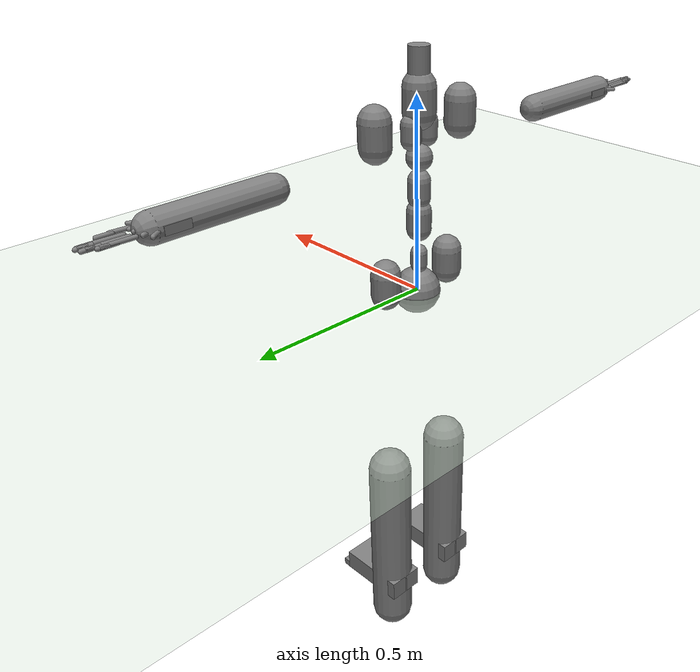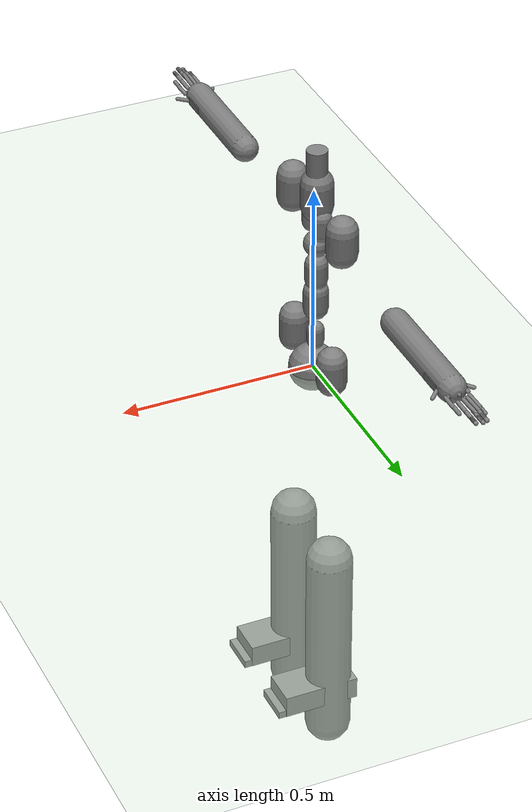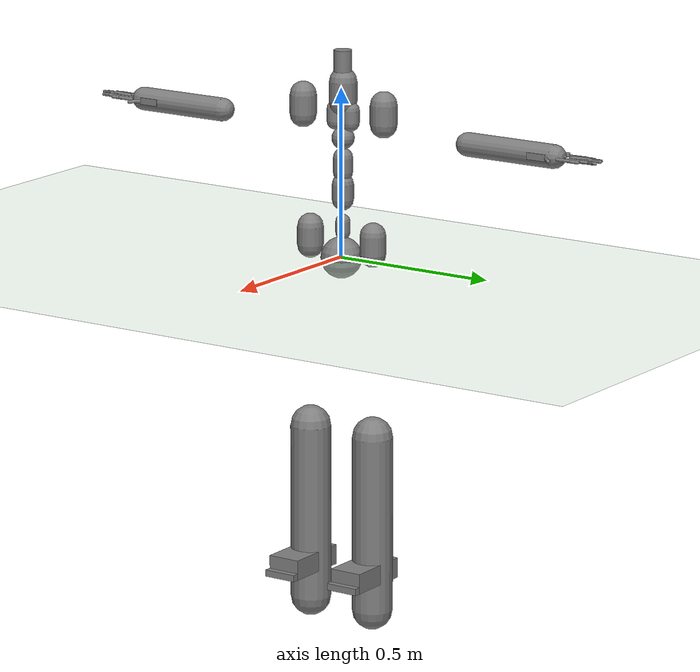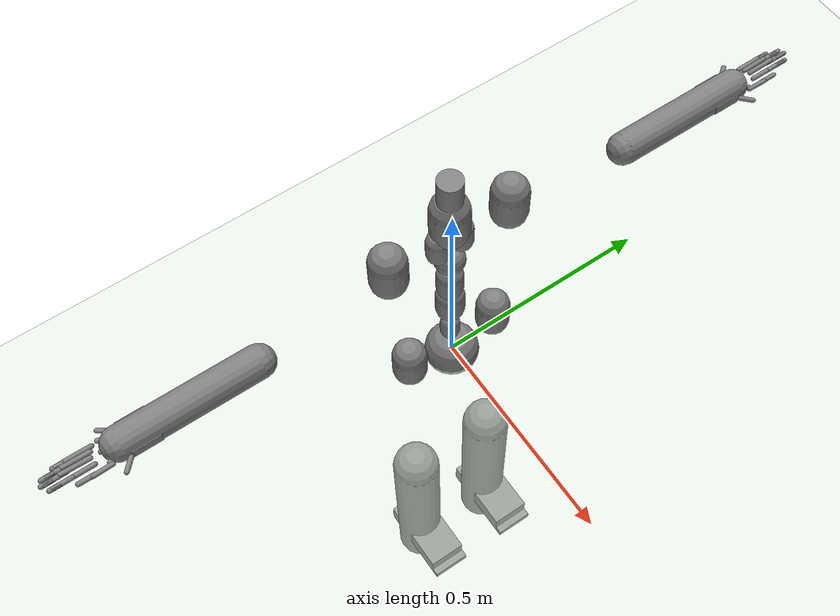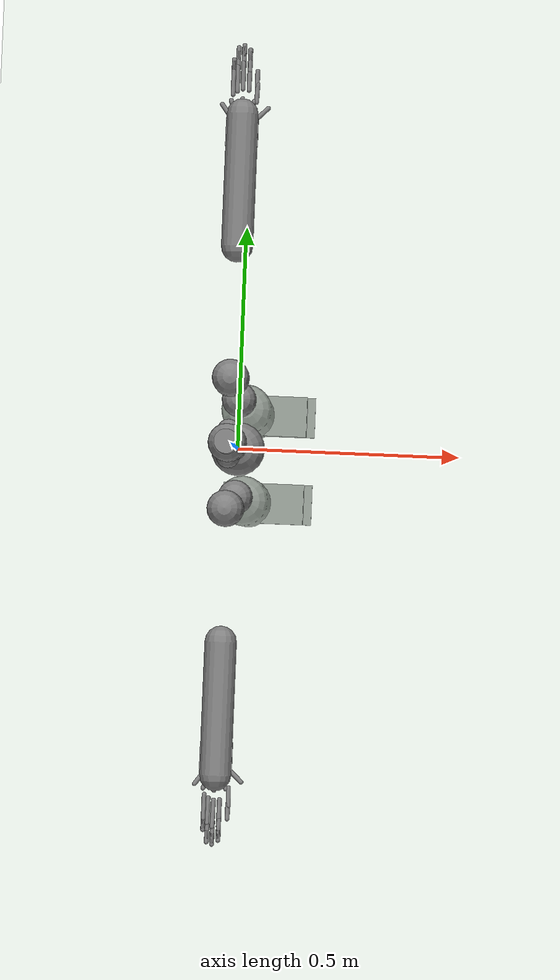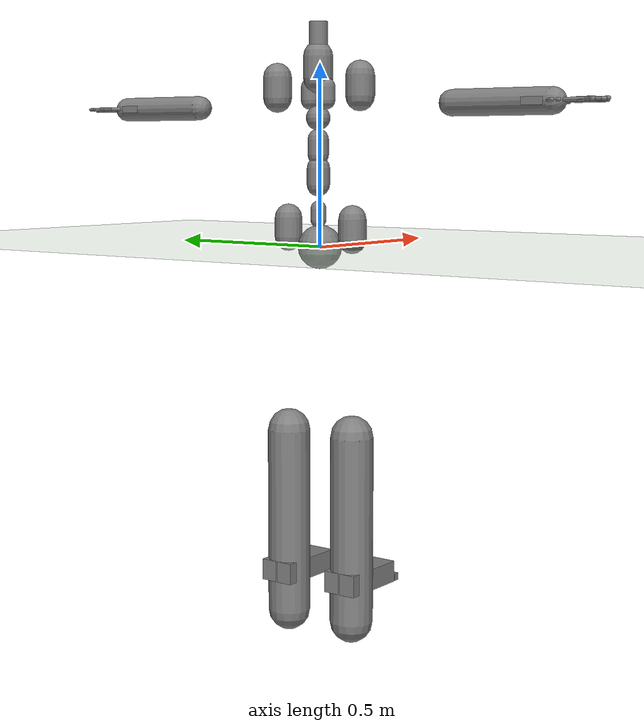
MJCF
<?xml version="1.0" ?>
<mujoco model="humanoid">
  <compiler coordinate="local"/>
  <statistic extent="2" center="0 0 1"/>
  <option timestep="0.00555"/>
  <default>
    <motor ctrlrange="-1 1" ctrllimited="true"/>
    <geom type="capsule" condim="1" friction="1.0 0.05 0.05" solimp=".9 .99 .003" solref=".015 1"/>
    <joint type="hinge" damping="0.1" stiffness="5" armature=".007" limited="true" solimplimit="0 .99 .01"/>
    <site size=".04" group="3"/>
  </default>
  <asset>
    <texture type="skybox" builtin="gradient" rgb1=".4 .5 .6" rgb2="0 0 0" width="100" height="100"/>
    <texture builtin="flat" height="1278" mark="cross" markrgb="1 1 1" name="texgeom" random="0.01" rgb1="0.8 0.6 0.4" rgb2="0.8 0.6 0.4" type="cube" width="127"/>
    <texture builtin="checker" height="100" name="texplane" rgb1="0 0 0" rgb2="0.8 0.8 0.8" type="2d" width="100"/>
    <material name="MatPlane" reflectance="0.5" shininess="1" specular="1" texrepeat="60 60" texture="texplane"/>
    <material name="geom" texture="texgeom" texuniform="true"/>
  </asset>
  <worldbody>
    <light cutoff="100" diffuse="1 1 1" dir="-0 0 -1.3" directional="true" exponent="1" pos="0 0 1.3" specular=".1 .1 .1"/>
    <geom conaffinity="1" condim="3" name="floor" pos="0 0 0" rgba="0.8 0.9 0.8 1" size="100 100 .2" type="plane" material="MatPlane"/>
    <body name="pHipOrigin" pos="0 0 0">
      <freejoint name="pHipOrigin"/>
      <geom type="sphere" contype="1" conaffinity="1" density="4629.6296296296305" size="0.06083" pos="0.0000 0.0000 -0.0000"/>
      <body name="jL5S1" pos="-0.00685425 0 0.06168810">
        <geom type="capsule" contype="1" conaffinity="1" density="1000" fromto="0 0 0.01241 0 0 0.04345" size="0.02172"/>
        <joint name="jL5S1_x" type="hinge" pos="0 0 0" axis="1 0 0" stiffness="500" damping="500" armature="0.02" range="-180.0000 180.0000"/>
        <joint name="jL5S1_y" type="hinge" pos="0 0 0" axis="0 1 0" stiffness="500" damping="500" armature="0.02" range="-180.0000 180.0000"/>
        <joint name="jL5S1_z" type="hinge" pos="0 0 0" axis="0 0 1" stiffness="500" damping="500" armature="0.02" range="-180.0000 180.0000"/>
        <body name="jL4L3" pos="0 0 0.09068398">
          <geom type="capsule" contype="1" conaffinity="1" density="1000" fromto="0 0 0.01814 0 0 0.06348" size="0.03174"/>
          <joint name="jL4L3_x" type="hinge" pos="0 0 0" axis="1 0 0" stiffness="500" damping="500" armature="0.02" range="-180.0000 180.0000"/>
          <joint name="jL4L3_y" type="hinge" pos="0 0 0" axis="0 1 0" stiffness="500" damping="500" armature="0.02" range="-180.0000 180.0000"/>
          <joint name="jL4L3_z" type="hinge" pos="0 0 0" axis="0 0 1" stiffness="500" damping="500" armature="0.02" range="-180.0000 180.0000"/>
          <body name="jL1T12" pos="-0.00064030 0 0.08299462">
            <geom type="capsule" contype="1" conaffinity="1" density="1000" fromto="0 0 0.01660 0 0 0.05810" size="0.02905"/>
            <joint name="jL1T12_x" type="hinge" pos="0 0 0" axis="1 0 0" stiffness="500" damping="500" armature="0.02" range="-180.0000 180.0000"/>
            <joint name="jL1T12_y" type="hinge" pos="0 0 0" axis="0 1 0" stiffness="500" damping="500" armature="0.02" range="-180.0000 180.0000"/>
            <joint name="jL1T12_z" type="hinge" pos="0 0 0" axis="0 0 1" stiffness="500" damping="500" armature="0.02" range="-180.0000 180.0000"/>
            <body name="jT9T8" pos="-0.00064118 0 0.08294707">
              <geom type="sphere" contype="1" conaffinity="1" density="1000" size="0.03318" pos="0.000 0.0000 0.033180"/>
              <joint name="jT9T8_x" type="hinge" pos="0 0 0" axis="1 0 0" stiffness="500" damping="500" armature="0.02" range="-180.0000 180.0000"/>
              <joint name="jT9T8_y" type="hinge" pos="0 0 0" axis="0 1 0" stiffness="500" damping="500" armature="0.02" range="-180.0000 180.0000"/>
              <joint name="jT9T8_z" type="hinge" pos="0 0 0" axis="0 0 1" stiffness="500" damping="500" armature="0.02" range="-180.0000 180.0000"/>
              <body name="jT1C7" pos="0 0 0.11675301">
                <geom type="capsule" contype="1" conaffinity="1" density="1000" fromto="0 0 0.02335 0 0 0.08173" size="0.04086"/>
                <joint name="jT1C7_x" type="hinge" pos="0 0 0" axis="1 0 0" stiffness="500" damping="500" armature="0.02" range="-180.0000 180.0000"/>
                <joint name="jT1C7_y" type="hinge" pos="0 0 0" axis="0 1 0" stiffness="500" damping="500" armature="0.02" range="-180.0000 180.0000"/>
                <joint name="jT1C7_z" type="hinge" pos="0 0 0" axis="0 0 1" stiffness="500" damping="500" armature="0.02" range="-180.0000 180.0000"/>
                <body name="jC1Head" pos="0.00102991 0 0.08729847">
                  <geom type="cylinder" contype="1" conaffinity="1" density="1000" fromto="0 0 0 0 0 0.08730" size="0.02619"/>
                  <joint name="jC1Head_x" type="hinge" pos="0 0 0" axis="1 0 0" stiffness="500" damping="500" armature="0.02" range="-180.0000 180.0000"/>
                  <joint name="jC1Head_y" type="hinge" pos="0 0 0" axis="0 1 0" stiffness="500" damping="500" armature="0.02" range="-180.0000 180.0000"/>
                  <joint name="jC1Head_z" type="hinge" pos="0 0 0" axis="0 0 1" stiffness="500" damping="500" armature="0.02" range="-180.0000 180.0000"/>
                </body>
              </body>
              <body name="jRightT4Shoulder" pos="0 -0.02716545 0.06623533">
                <geom type="capsule" contype="1" conaffinity="1" density="1000" fromto="0 0 0.01432 0 0 0.05011" size="0.02506"/>
                <joint name="jRightT4Shoulder_x" type="hinge" pos="0 0 0" axis="1 0 0" stiffness="500" damping="500" armature="0.02" range="-180.0000 180.0000"/>
                <joint name="jRightT4Shoulder_y" type="hinge" pos="0 0 0" axis="0 1 0" stiffness="500" damping="500" armature="0.02" range="-180.0000 180.0000"/>
                <joint name="jRightT4Shoulder_z" type="hinge" pos="0 0 0" axis="0 0 1" stiffness="500" damping="500" armature="0.02" range="-180.0000 180.0000"/>
                <body name="jRightShoulder" pos="0 -0.11260448 0">
                  <geom type="capsule" contype="1" conaffinity="1" density="1000" fromto="0 0 0.02252 0 0 0.07882" size="0.03941"/>
                  <joint name="jRightShoulder_x" type="hinge" pos="0 0 0" axis="1 0 0" stiffness="500" damping="500" armature="0.02" range="-180.0000 180.0000"/>
                  <joint name="jRightShoulder_y" type="hinge" pos="0 0 0" axis="0 1 0" stiffness="500" damping="500" armature="0.02" range="-180.0000 180.0000"/>
                  <joint name="jRightShoulder_z" type="hinge" pos="0 0 0" axis="0 0 1" stiffness="500" damping="500" armature="0.02" range="-180.0000 180.0000"/>
                  <body name="jRightElbow" pos="0 -0.28721336 0">
                    <geom type="capsule" contype="1" conaffinity="1" density="1000" fromto="0 0 0 0.00000000 -0.28721336 0.00000000" size="0.03447"/>
                    <joint name="jRightElbow_x" type="hinge" pos="0 0 0" axis="1 0 0" stiffness="500" damping="500" armature="0.02" range="-180.0000 180.0000"/>
                    <joint name="jRightElbow_y" type="hinge" pos="0 0 0" axis="0 1 0" stiffness="500" damping="500" armature="0.02" range="-180.0000 180.0000"/>
                    <joint name="jRightElbow_z" type="hinge" pos="0 0 0" axis="0 0 1" stiffness="500" damping="500" armature="0.02" range="-180.0000 180.0000"/>
                    <body name="jRightWrist" pos="0.00009928 -0.24668009 0">
                      <geom density="1000" type="box" pos="0 0 0" size="0.035 0.03 0.01" quat="1.0000 0.0000 0.0000 0.0000"/>
                      <joint name="jRightWrist_x" type="hinge" pos="0 0 0" axis="1 0 0" stiffness="500" damping="500" armature="0.02" range="-180.0000 180.0000"/>
                      <joint name="jRightWrist_y" type="hinge" pos="0 0 0" axis="0 1 0" stiffness="500" damping="500" armature="0.02" range="-180.0000 180.0000"/>
                      <joint name="jRightWrist_z" type="hinge" pos="0 0 0" axis="0 0 1" stiffness="500" damping="500" armature="0.02" range="-180.0000 180.0000"/>
                      <body name="jRightFirstCMC" pos="0.02813643 -0.02697035 -0.00127419">
                        <geom type="capsule" contype="1" conaffinity="1" density="1000" fromto="0 0 0 0.02813643 -0.02697035 -0.00127419" size="0.005"/>
                        <joint name="jRightFirstCMC_x" type="hinge" pos="0 0 0" axis="1 0 0" stiffness="500" damping="500" armature="0.02" range="-180.0000 180.0000"/>
                        <joint name="jRightFirstCMC_y" type="hinge" pos="0 0 0" axis="0 1 0" stiffness="500" damping="500" armature="0.02" range="-180.0000 180.0000"/>
                        <joint name="jRightFirstCMC_z" type="hinge" pos="0 0 0" axis="0 0 1" stiffness="500" damping="500" armature="0.02" range="-180.0000 180.0000"/>
                        <body name="jRightFirstMCP" pos="0.00140398 -0.03961937 0.00083715">
                          <geom type="capsule" contype="1" conaffinity="1" density="1000" fromto="0 0 0 0.00140398 -0.03961937 0.00083715" size="0.005"/>
                          <joint name="jRightFirstMCP_x" type="hinge" pos="0 0 0" axis="1 0 0" stiffness="500" damping="500" armature="0.02" range="-180.0000 180.0000"/>
                          <joint name="jRightFirstMCP_y" type="hinge" pos="0 0 0" axis="0 1 0" stiffness="500" damping="500" armature="0.02" range="-180.0000 180.0000"/>
                          <joint name="jRightFirstMCP_z" type="hinge" pos="0 0 0" axis="0 0 1" stiffness="500" damping="500" armature="0.02" range="-180.0000 180.0000"/>
                          <body name="jRightIP" pos="0 -0.03371850 0">
                            <geom type="capsule" contype="1" conaffinity="1" density="1000" fromto="0 0 0 0.00000000 -0.03371850 0.00000000" size="0.005"/>
                            <joint name="jRightIP_x" type="hinge" pos="0 0 0" axis="1 0 0" stiffness="500" damping="500" armature="0.02" range="-180.0000 180.0000"/>
                            <joint name="jRightIP_y" type="hinge" pos="0 0 0" axis="0 1 0" stiffness="500" damping="500" armature="0.02" range="-180.0000 180.0000"/>
                            <joint name="jRightIP_z" type="hinge" pos="0 0 0" axis="0 0 1" stiffness="500" damping="500" armature="0.02" range="-180.0000 180.0000"/>
                          </body>
                        </body>
                      </body>
                      <body name="jRightSecondCMC" pos="0.01193630 -0.03487410 -0.00060829">
                        <geom type="capsule" contype="1" conaffinity="1" density="1000" fromto="0 0 0 0.01193630 -0.03487410 -0.00060829" size="0.005"/>
                        <joint name="jRightSecondCMC_x" type="hinge" pos="0 0 0" axis="1 0 0" stiffness="500" damping="500" armature="0.02" range="-180.0000 180.0000"/>
                        <joint name="jRightSecondCMC_y" type="hinge" pos="0 0 0" axis="0 1 0" stiffness="500" damping="500" armature="0.02" range="-180.0000 180.0000"/>
                        <joint name="jRightSecondCMC_z" type="hinge" pos="0 0 0" axis="0 0 1" stiffness="500" damping="500" armature="0.02" range="-180.0000 180.0000"/>
                        <body name="jRightSecondMCP" pos="-0.00036414 -0.05807686 -0.00060245">
                          <geom type="capsule" contype="1" conaffinity="1" density="1000" fromto="0 0 0 -0.00036414 -0.05807686 -0.00060245" size="0.005"/>
                          <joint name="jRightSecondMCP_x" type="hinge" pos="0 0 0" axis="1 0 0" stiffness="500" damping="500" armature="0.02" range="-180.0000 180.0000"/>
                          <joint name="jRightSecondMCP_y" type="hinge" pos="0 0 0" axis="0 1 0" stiffness="500" damping="500" armature="0.02" range="-180.0000 180.0000"/>
                          <joint name="jRightSecondMCP_z" type="hinge" pos="0 0 0" axis="0 0 1" stiffness="500" damping="500" armature="0.02" range="-180.0000 180.0000"/>
                          <body name="jRightSecondPIP" pos="0 -0.04197802 0">
                            <geom type="capsule" contype="1" conaffinity="1" density="1000" fromto="0 0 0 0.00000000 -0.04197802 0.00000000" size="0.005"/>
                            <joint name="jRightSecondPIP_x" type="hinge" pos="0 0 0" axis="1 0 0" stiffness="500" damping="500" armature="0.02" range="-180.0000 180.0000"/>
                            <joint name="jRightSecondPIP_y" type="hinge" pos="0 0 0" axis="0 1 0" stiffness="500" damping="500" armature="0.02" range="-180.0000 180.0000"/>
                            <joint name="jRightSecondPIP_z" type="hinge" pos="0 0 0" axis="0 0 1" stiffness="500" damping="500" armature="0.02" range="-180.0000 180.0000"/>
                            <body name="jRightSecondDIP" pos="0 -0.02294350 0">
                              <geom type="capsule" contype="1" conaffinity="1" density="1000" fromto="0 0 0 0.00000000 -0.02294350 0.00000000" size="0.005"/>
                              <joint name="jRightSecondDIP_x" type="hinge" pos="0 0 0" axis="1 0 0" stiffness="500" damping="500" armature="0.02" range="-180.0000 180.0000"/>
                              <joint name="jRightSecondDIP_y" type="hinge" pos="0 0 0" axis="0 1 0" stiffness="500" damping="500" armature="0.02" range="-180.0000 180.0000"/>
                              <joint name="jRightSecondDIP_z" type="hinge" pos="0 0 0" axis="0 0 1" stiffness="500" damping="500" armature="0.02" range="-180.0000 180.0000"/>
                            </body>
                          </body>
                        </body>
                      </body>
                      <body name="jRightThirdCMC" pos="-0.00067904 -0.03672065 0.00154379">
                        <geom type="capsule" contype="1" conaffinity="1" density="1000" fromto="0 0 0 -0.00067904 -0.03672065 0.00154379" size="0.005"/>
                        <joint name="jRightThirdCMC_x" type="hinge" pos="0 0 0" axis="1 0 0" stiffness="500" damping="500" armature="0.02" range="-180.0000 180.0000"/>
                        <joint name="jRightThirdCMC_y" type="hinge" pos="0 0 0" axis="0 1 0" stiffness="500" damping="500" armature="0.02" range="-180.0000 180.0000"/>
                        <joint name="jRightThirdCMC_z" type="hinge" pos="0 0 0" axis="0 0 1" stiffness="500" damping="500" armature="0.02" range="-180.0000 180.0000"/>
                        <body name="jRightThirdMCP" pos="-0.00069473 -0.05755853 0.00156595">
                          <geom type="capsule" contype="1" conaffinity="1" density="1000" fromto="0 0 0 -0.00069473 -0.05755853 0.00156595" size="0.005"/>
                          <joint name="jRightThirdMCP_x" type="hinge" pos="0 0 0" axis="1 0 0" stiffness="500" damping="500" armature="0.02" range="-180.0000 180.0000"/>
                          <joint name="jRightThirdMCP_y" type="hinge" pos="0 0 0" axis="0 1 0" stiffness="500" damping="500" armature="0.02" range="-180.0000 180.0000"/>
                          <joint name="jRightThirdMCP_z" type="hinge" pos="0 0 0" axis="0 0 1" stiffness="500" damping="500" armature="0.02" range="-180.0000 180.0000"/>
                          <body name="jRightThirdPIP" pos="0 -0.04599662 0">
                            <geom type="capsule" contype="1" conaffinity="1" density="1000" fromto="0 0 0 0.00000000 -0.04599662 0.00000000" size="0.005"/>
                            <joint name="jRightThirdPIP_x" type="hinge" pos="0 0 0" axis="1 0 0" stiffness="500" damping="500" armature="0.02" range="-180.0000 180.0000"/>
                            <joint name="jRightThirdPIP_y" type="hinge" pos="0 0 0" axis="0 1 0" stiffness="500" damping="500" armature="0.02" range="-180.0000 180.0000"/>
                            <joint name="jRightThirdPIP_z" type="hinge" pos="0 0 0" axis="0 0 1" stiffness="500" damping="500" armature="0.02" range="-180.0000 180.0000"/>
                            <body name="jRightThirdDIP" pos="0 -0.02457717 0">
                              <geom type="capsule" contype="1" conaffinity="1" density="1000" fromto="0 0 0 0.00000000 -0.02457717 0.00000000" size="0.005"/>
                              <joint name="jRightThirdDIP_x" type="hinge" pos="0 0 0" axis="1 0 0" stiffness="500" damping="500" armature="0.02" range="-180.0000 180.0000"/>
                              <joint name="jRightThirdDIP_y" type="hinge" pos="0 0 0" axis="0 1 0" stiffness="500" damping="500" armature="0.02" range="-180.0000 180.0000"/>
                              <joint name="jRightThirdDIP_z" type="hinge" pos="0 0 0" axis="0 0 1" stiffness="500" damping="500" armature="0.02" range="-180.0000 180.0000"/>
                            </body>
                          </body>
                        </body>
                      </body>
                      <body name="jRightFourthCMC" pos="-0.01247319 -0.03473990 0.00081772">
                        <geom type="capsule" contype="1" conaffinity="1" density="1000" fromto="0 0 0 -0.01247319 -0.03473990 0.00081772" size="0.005"/>
                        <joint name="jRightFourthCMC_x" type="hinge" pos="0 0 0" axis="1 0 0" stiffness="500" damping="500" armature="0.02" range="-180.0000 180.0000"/>
                        <joint name="jRightFourthCMC_y" type="hinge" pos="0 0 0" axis="0 1 0" stiffness="500" damping="500" armature="0.02" range="-180.0000 180.0000"/>
                        <joint name="jRightFourthCMC_z" type="hinge" pos="0 0 0" axis="0 0 1" stiffness="500" damping="500" armature="0.02" range="-180.0000 180.0000"/>
                        <body name="jRightFourthMCP" pos="-0.00039899 -0.05468589 0.00085916">
                          <geom type="capsule" contype="1" conaffinity="1" density="1000" fromto="0 0 0 -0.00039899 -0.05468589 0.00085916" size="0.005"/>
                          <joint name="jRightFourthMCP_x" type="hinge" pos="0 0 0" axis="1 0 0" stiffness="500" damping="500" armature="0.02" range="-180.0000 180.0000"/>
                          <joint name="jRightFourthMCP_y" type="hinge" pos="0 0 0" axis="0 1 0" stiffness="500" damping="500" armature="0.02" range="-180.0000 180.0000"/>
                          <joint name="jRightFourthMCP_z" type="hinge" pos="0 0 0" axis="0 0 1" stiffness="500" damping="500" armature="0.02" range="-180.0000 180.0000"/>
                          <body name="jRightFourthPIP" pos="0 -0.04364994 0">
                            <geom type="capsule" contype="1" conaffinity="1" density="1000" fromto="0 0 0 0.00000000 -0.04364994 0.00000000" size="0.005"/>
                            <joint name="jRightFourthPIP_x" type="hinge" pos="0 0 0" axis="1 0 0" stiffness="500" damping="500" armature="0.02" range="-180.0000 180.0000"/>
                            <joint name="jRightFourthPIP_y" type="hinge" pos="0 0 0" axis="0 1 0" stiffness="500" damping="500" armature="0.02" range="-180.0000 180.0000"/>
                            <joint name="jRightFourthPIP_z" type="hinge" pos="0 0 0" axis="0 0 1" stiffness="500" damping="500" armature="0.02" range="-180.0000 180.0000"/>
                            <body name="jRightFourthDIP" pos="0 -0.02582212 0">
                              <geom type="capsule" contype="1" conaffinity="1" density="1000" fromto="0 0 0 0.00000000 -0.02582212 0.00000000" size="0.005"/>
                              <joint name="jRightFourthDIP_x" type="hinge" pos="0 0 0" axis="1 0 0" stiffness="500" damping="500" armature="0.02" range="-180.0000 180.0000"/>
                              <joint name="jRightFourthDIP_y" type="hinge" pos="0 0 0" axis="0 1 0" stiffness="500" damping="500" armature="0.02" range="-180.0000 180.0000"/>
                              <joint name="jRightFourthDIP_z" type="hinge" pos="0 0 0" axis="0 0 1" stiffness="500" damping="500" armature="0.02" range="-180.0000 180.0000"/>
                            </body>
                          </body>
                        </body>
                      </body>
                      <body name="jRightFifthCMC" pos="-0.02180614 -0.03038437 0.00059939">
                        <geom type="capsule" contype="1" conaffinity="1" density="1000" fromto="0 0 0 -0.02180614 -0.03038437 0.00059939" size="0.005"/>
                        <joint name="jRightFifthCMC_x" type="hinge" pos="0 0 0" axis="1 0 0" stiffness="500" damping="500" armature="0.02" range="-180.0000 180.0000"/>
                        <joint name="jRightFifthCMC_y" type="hinge" pos="0 0 0" axis="0 1 0" stiffness="500" damping="500" armature="0.02" range="-180.0000 180.0000"/>
                        <joint name="jRightFifthCMC_z" type="hinge" pos="0 0 0" axis="0 0 1" stiffness="500" damping="500" armature="0.02" range="-180.0000 180.0000"/>
                        <body name="jRightFifthMCP" pos="-0.00000767 -0.05196040 0.00071504">
                          <geom type="capsule" contype="1" conaffinity="1" density="1000" fromto="0 0 0 -0.00000767 -0.05196040 0.00071504" size="0.005"/>
                          <joint name="jRightFifthMCP_x" type="hinge" pos="0 0 0" axis="1 0 0" stiffness="500" damping="500" armature="0.02" range="-180.0000 180.0000"/>
                          <joint name="jRightFifthMCP_y" type="hinge" pos="0 0 0" axis="0 1 0" stiffness="500" damping="500" armature="0.02" range="-180.0000 180.0000"/>
                          <joint name="jRightFifthMCP_z" type="hinge" pos="0 0 0" axis="0 0 1" stiffness="500" damping="500" armature="0.02" range="-180.0000 180.0000"/>
                          <body name="jRightFifthPIP" pos="0 -0.03648683 0">
                            <geom type="capsule" contype="1" conaffinity="1" density="1000" fromto="0 0 0 0.00000000 -0.03648683 0.00000000" size="0.005"/>
                            <joint name="jRightFifthPIP_x" type="hinge" pos="0 0 0" axis="1 0 0" stiffness="500" damping="500" armature="0.02" range="-180.0000 180.0000"/>
                            <joint name="jRightFifthPIP_y" type="hinge" pos="0 0 0" axis="0 1 0" stiffness="500" damping="500" armature="0.02" range="-180.0000 180.0000"/>
                            <joint name="jRightFifthPIP_z" type="hinge" pos="0 0 0" axis="0 0 1" stiffness="500" damping="500" armature="0.02" range="-180.0000 180.0000"/>
                            <body name="jRightFifthDIP" pos="0 -0.01982467 0">
                              <geom type="capsule" contype="1" conaffinity="1" density="1000" fromto="0 0 0 0.00000000 -0.01982467 0.00000000" size="0.005"/>
                              <joint name="jRightFifthDIP_x" type="hinge" pos="0 0 0" axis="1 0 0" stiffness="500" damping="500" armature="0.02" range="-180.0000 180.0000"/>
                              <joint name="jRightFifthDIP_y" type="hinge" pos="0 0 0" axis="0 1 0" stiffness="500" damping="500" armature="0.02" range="-180.0000 180.0000"/>
                              <joint name="jRightFifthDIP_z" type="hinge" pos="0 0 0" axis="0 0 1" stiffness="500" damping="500" armature="0.02" range="-180.0000 180.0000"/>
                            </body>
                          </body>
                        </body>
                      </body>
                    </body>
                  </body>
                </body>
              </body>
              <body name="jLeftT4Shoulder" pos="0 0.02726812 0.06648566">
                <geom type="capsule" contype="1" conaffinity="1" density="1000" fromto="0 0 0.01437 0 0 0.05030" size="0.02515"/>
                <joint name="jLeftT4Shoulder_x" type="hinge" pos="0 0 0" axis="1 0 0" stiffness="500" damping="500" armature="0.02" range="-180.0000 180.0000"/>
                <joint name="jLeftT4Shoulder_y" type="hinge" pos="0 0 0" axis="0 1 0" stiffness="500" damping="500" armature="0.02" range="-180.0000 180.0000"/>
                <joint name="jLeftT4Shoulder_z" type="hinge" pos="0 0 0" axis="0 0 1" stiffness="500" damping="500" armature="0.02" range="-180.0000 180.0000"/>
                <body name="jLeftShoulder" pos="0 0.11346807 0">
                  <geom type="capsule" contype="1" conaffinity="1" density="1000" fromto="0 0 0.02269 0 0 0.07943" size="0.03971"/>
                  <joint name="jLeftShoulder_x" type="hinge" pos="0 0 0" axis="1 0 0" stiffness="500" damping="500" armature="0.02" range="-180.0000 180.0000"/>
                  <joint name="jLeftShoulder_y" type="hinge" pos="0 0 0" axis="0 1 0" stiffness="500" damping="500" armature="0.02" range="-180.0000 180.0000"/>
                  <joint name="jLeftShoulder_z" type="hinge" pos="0 0 0" axis="0 0 1" stiffness="500" damping="500" armature="0.02" range="-180.0000 180.0000"/>
                  <body name="jLeftElbow" pos="0 0.28710324 0">
                    <geom type="capsule" contype="1" conaffinity="1" density="1000" fromto="0 0 0 0.00000000 0.28710324 0.00000000" size="0.03445"/>
                    <joint name="jLeftElbow_x" type="hinge" pos="0 0 0" axis="1 0 0" stiffness="500" damping="500" armature="0.02" range="-180.0000 180.0000"/>
                    <joint name="jLeftElbow_y" type="hinge" pos="0 0 0" axis="0 1 0" stiffness="500" damping="500" armature="0.02" range="-180.0000 180.0000"/>
                    <joint name="jLeftElbow_z" type="hinge" pos="0 0 0" axis="0 0 1" stiffness="500" damping="500" armature="0.02" range="-180.0000 180.0000"/>
                    <body name="jLeftWrist" pos="0.00009936 0.24687322 0">
                      <geom density="1000" type="box" pos="0 0 0" size="0.035 0.03 0.01" quat="1.0000 0.0000 0.0000 0.0000"/>
                      <joint name="jLeftWrist_x" type="hinge" pos="0 0 0" axis="1 0 0" stiffness="500" damping="500" armature="0.02" range="-180.0000 180.0000"/>
                      <joint name="jLeftWrist_y" type="hinge" pos="0 0 0" axis="0 1 0" stiffness="500" damping="500" armature="0.02" range="-180.0000 180.0000"/>
                      <joint name="jLeftWrist_z" type="hinge" pos="0 0 0" axis="0 0 1" stiffness="500" damping="500" armature="0.02" range="-180.0000 180.0000"/>
                      <body name="jLeftFirstCMC" pos="0.02753894 0.02760397 -0.00123255">
                        <geom type="capsule" contype="1" conaffinity="1" density="1000" fromto="0 0 0 0.02753894 0.02760397 -0.00123255" size="0.005"/>
                        <joint name="jLeftFirstCMC_x" type="hinge" pos="0 0 0" axis="1 0 0" stiffness="500" damping="500" armature="0.02" range="-180.0000 180.0000"/>
                        <joint name="jLeftFirstCMC_y" type="hinge" pos="0 0 0" axis="0 1 0" stiffness="500" damping="500" armature="0.02" range="-180.0000 180.0000"/>
                        <joint name="jLeftFirstCMC_z" type="hinge" pos="0 0 0" axis="0 0 1" stiffness="500" damping="500" armature="0.02" range="-180.0000 180.0000"/>
                        <body name="jLeftFirstMCP" pos="0.00139046 0.03961848 0.00081584">
                          <geom type="capsule" contype="1" conaffinity="1" density="1000" fromto="0 0 0 0.00139046 0.03961848 0.00081584" size="0.005"/>
                          <joint name="jLeftFirstMCP_x" type="hinge" pos="0 0 0" axis="1 0 0" stiffness="500" damping="500" armature="0.02" range="-180.0000 180.0000"/>
                          <joint name="jLeftFirstMCP_y" type="hinge" pos="0 0 0" axis="0 1 0" stiffness="500" damping="500" armature="0.02" range="-180.0000 180.0000"/>
                          <joint name="jLeftFirstMCP_z" type="hinge" pos="0 0 0" axis="0 0 1" stiffness="500" damping="500" armature="0.02" range="-180.0000 180.0000"/>
                          <body name="jLeftIP" pos="0 0.03371850 0">
                            <geom type="capsule" contype="1" conaffinity="1" density="1000" fromto="0 0 0 0.00000000 0.03371850 0.00000000" size="0.005"/>
                            <joint name="jLeftIP_x" type="hinge" pos="0 0 0" axis="1 0 0" stiffness="500" damping="500" armature="0.02" range="-180.0000 180.0000"/>
                            <joint name="jLeftIP_y" type="hinge" pos="0 0 0" axis="0 1 0" stiffness="500" damping="500" armature="0.02" range="-180.0000 180.0000"/>
                            <joint name="jLeftIP_z" type="hinge" pos="0 0 0" axis="0 0 1" stiffness="500" damping="500" armature="0.02" range="-180.0000 180.0000"/>
                          </body>
                        </body>
                      </body>
                      <body name="jLeftSecondCMC" pos="0.01207379 0.03480993 -0.00061331">
                        <geom type="capsule" contype="1" conaffinity="1" density="1000" fromto="0 0 0 0.01207379 0.03480993 -0.00061331" size="0.005"/>
                        <joint name="jLeftSecondCMC_x" type="hinge" pos="0 0 0" axis="1 0 0" stiffness="500" damping="500" armature="0.02" range="-180.0000 180.0000"/>
                        <joint name="jLeftSecondCMC_y" type="hinge" pos="0 0 0" axis="0 1 0" stiffness="500" damping="500" armature="0.02" range="-180.0000 180.0000"/>
                        <joint name="jLeftSecondCMC_z" type="hinge" pos="0 0 0" axis="0 0 1" stiffness="500" damping="500" armature="0.02" range="-180.0000 180.0000"/>
                        <body name="jLeftSecondMCP" pos="-0.00031750 0.05807805 -0.00060989">
                          <geom type="capsule" contype="1" conaffinity="1" density="1000" fromto="0 0 0 -0.00031750 0.05807805 -0.00060989" size="0.005"/>
                          <joint name="jLeftSecondMCP_x" type="hinge" pos="0 0 0" axis="1 0 0" stiffness="500" damping="500" armature="0.02" range="-180.0000 180.0000"/>
                          <joint name="jLeftSecondMCP_y" type="hinge" pos="0 0 0" axis="0 1 0" stiffness="500" damping="500" armature="0.02" range="-180.0000 180.0000"/>
                          <joint name="jLeftSecondMCP_z" type="hinge" pos="0 0 0" axis="0 0 1" stiffness="500" damping="500" armature="0.02" range="-180.0000 180.0000"/>
                          <body name="jLeftSecondPIP" pos="0 0.04197802 0">
                            <geom type="capsule" contype="1" conaffinity="1" density="1000" fromto="0 0 0 0.00000000 0.04197802 0.00000000" size="0.005"/>
                            <joint name="jLeftSecondPIP_x" type="hinge" pos="0 0 0" axis="1 0 0" stiffness="500" damping="500" armature="0.02" range="-180.0000 180.0000"/>
                            <joint name="jLeftSecondPIP_y" type="hinge" pos="0 0 0" axis="0 1 0" stiffness="500" damping="500" armature="0.02" range="-180.0000 180.0000"/>
                            <joint name="jLeftSecondPIP_z" type="hinge" pos="0 0 0" axis="0 0 1" stiffness="500" damping="500" armature="0.02" range="-180.0000 180.0000"/>
                            <body name="jLeftSecondDIP" pos="0 0.02294350 0">
                              <geom type="capsule" contype="1" conaffinity="1" density="1000" fromto="0 0 0 0.00000000 0.02294350 0.00000000" size="0.005"/>
                              <joint name="jLeftSecondDIP_x" type="hinge" pos="0 0 0" axis="1 0 0" stiffness="500" damping="500" armature="0.02" range="-180.0000 180.0000"/>
                              <joint name="jLeftSecondDIP_y" type="hinge" pos="0 0 0" axis="0 1 0" stiffness="500" damping="500" armature="0.02" range="-180.0000 180.0000"/>
                              <joint name="jLeftSecondDIP_z" type="hinge" pos="0 0 0" axis="0 0 1" stiffness="500" damping="500" armature="0.02" range="-180.0000 180.0000"/>
                            </body>
                          </body>
                        </body>
                      </body>
                      <body name="jLeftThirdCMC" pos="-0.00068302 0.03672395 0.00149233">
                        <geom type="capsule" contype="1" conaffinity="1" density="1000" fromto="0 0 0 -0.00068302 0.03672395 0.00149233" size="0.005"/>
                        <joint name="jLeftThirdCMC_x" type="hinge" pos="0 0 0" axis="1 0 0" stiffness="500" damping="500" armature="0.02" range="-180.0000 180.0000"/>
                        <joint name="jLeftThirdCMC_y" type="hinge" pos="0 0 0" axis="0 1 0" stiffness="500" damping="500" armature="0.02" range="-180.0000 180.0000"/>
                        <joint name="jLeftThirdCMC_z" type="hinge" pos="0 0 0" axis="0 0 1" stiffness="500" damping="500" armature="0.02" range="-180.0000 180.0000"/>
                        <body name="jLeftThirdMCP" pos="-0.00070034 0.05755964 0.00153446">
                          <geom type="capsule" contype="1" conaffinity="1" density="1000" fromto="0 0 0 -0.00070034 0.05755964 0.00153446" size="0.005"/>
                          <joint name="jLeftThirdMCP_x" type="hinge" pos="0 0 0" axis="1 0 0" stiffness="500" damping="500" armature="0.02" range="-180.0000 180.0000"/>
                          <joint name="jLeftThirdMCP_y" type="hinge" pos="0 0 0" axis="0 1 0" stiffness="500" damping="500" armature="0.02" range="-180.0000 180.0000"/>
                          <joint name="jLeftThirdMCP_z" type="hinge" pos="0 0 0" axis="0 0 1" stiffness="500" damping="500" armature="0.02" range="-180.0000 180.0000"/>
                          <body name="jLeftThirdPIP" pos="0 0.04599662 0">
                            <geom type="capsule" contype="1" conaffinity="1" density="1000" fromto="0 0 0 0.00000000 0.04599662 0.00000000" size="0.005"/>
                            <joint name="jLeftThirdPIP_x" type="hinge" pos="0 0 0" axis="1 0 0" stiffness="500" damping="500" armature="0.02" range="-180.0000 180.0000"/>
                            <joint name="jLeftThirdPIP_y" type="hinge" pos="0 0 0" axis="0 1 0" stiffness="500" damping="500" armature="0.02" range="-180.0000 180.0000"/>
                            <joint name="jLeftThirdPIP_z" type="hinge" pos="0 0 0" axis="0 0 1" stiffness="500" damping="500" armature="0.02" range="-180.0000 180.0000"/>
                            <body name="jLeftThirdDIP" pos="0 0.02457717 0">
                              <geom type="capsule" contype="1" conaffinity="1" density="1000" fromto="0 0 0 0.00000000 0.02457717 0.00000000" size="0.005"/>
                              <joint name="jLeftThirdDIP_x" type="hinge" pos="0 0 0" axis="1 0 0" stiffness="500" damping="500" armature="0.02" range="-180.0000 180.0000"/>
                              <joint name="jLeftThirdDIP_y" type="hinge" pos="0 0 0" axis="0 1 0" stiffness="500" damping="500" armature="0.02" range="-180.0000 180.0000"/>
                              <joint name="jLeftThirdDIP_z" type="hinge" pos="0 0 0" axis="0 0 1" stiffness="500" damping="500" armature="0.02" range="-180.0000 180.0000"/>
                            </body>
                          </body>
                        </body>
                      </body>
                      <body name="jLeftFourthCMC" pos="-0.01293088 0.03456221 0.00087291">
                        <geom type="capsule" contype="1" conaffinity="1" density="1000" fromto="0 0 0 -0.01293088 0.03456221 0.00087291" size="0.005"/>
                        <joint name="jLeftFourthCMC_x" type="hinge" pos="0 0 0" axis="1 0 0" stiffness="500" damping="500" armature="0.02" range="-180.0000 180.0000"/>
                        <joint name="jLeftFourthCMC_y" type="hinge" pos="0 0 0" axis="0 1 0" stiffness="500" damping="500" armature="0.02" range="-180.0000 180.0000"/>
                        <joint name="jLeftFourthCMC_z" type="hinge" pos="0 0 0" axis="0 0 1" stiffness="500" damping="500" armature="0.02" range="-180.0000 180.0000"/>
                        <body name="jLeftFourthMCP" pos="-0.00042908 0.05468277 0.00090866">
                          <geom type="capsule" contype="1" conaffinity="1" density="1000" fromto="0 0 0 -0.00042908 0.05468277 0.00090866" size="0.005"/>
                          <joint name="jLeftFourthMCP_x" type="hinge" pos="0 0 0" axis="1 0 0" stiffness="500" damping="500" armature="0.02" range="-180.0000 180.0000"/>
                          <joint name="jLeftFourthMCP_y" type="hinge" pos="0 0 0" axis="0 1 0" stiffness="500" damping="500" armature="0.02" range="-180.0000 180.0000"/>
                          <joint name="jLeftFourthMCP_z" type="hinge" pos="0 0 0" axis="0 0 1" stiffness="500" damping="500" armature="0.02" range="-180.0000 180.0000"/>
                          <body name="jLeftFourthPIP" pos="0 0.04364994 0">
                            <geom type="capsule" contype="1" conaffinity="1" density="1000" fromto="0 0 0 0.00000000 0.04364994 0.00000000" size="0.005"/>
                            <joint name="jLeftFourthPIP_x" type="hinge" pos="0 0 0" axis="1 0 0" stiffness="500" damping="500" armature="0.02" range="-180.0000 180.0000"/>
                            <joint name="jLeftFourthPIP_y" type="hinge" pos="0 0 0" axis="0 1 0" stiffness="500" damping="500" armature="0.02" range="-180.0000 180.0000"/>
                            <joint name="jLeftFourthPIP_z" type="hinge" pos="0 0 0" axis="0 0 1" stiffness="500" damping="500" armature="0.02" range="-180.0000 180.0000"/>
                            <body name="jLeftFourthDIP" pos="0 0.02582212 0">
                              <geom type="capsule" contype="1" conaffinity="1" density="1000" fromto="0 0 0 0.00000000 0.02582212 0.00000000" size="0.005"/>
                              <joint name="jLeftFourthDIP_x" type="hinge" pos="0 0 0" axis="1 0 0" stiffness="500" damping="500" armature="0.02" range="-180.0000 180.0000"/>
                              <joint name="jLeftFourthDIP_y" type="hinge" pos="0 0 0" axis="0 1 0" stiffness="500" damping="500" armature="0.02" range="-180.0000 180.0000"/>
                              <joint name="jLeftFourthDIP_z" type="hinge" pos="0 0 0" axis="0 0 1" stiffness="500" damping="500" armature="0.02" range="-180.0000 180.0000"/>
                            </body>
                          </body>
                        </body>
                      </body>
                      <body name="jLeftFifthCMC" pos="-0.02246673 0.02990402 0.00060902">
                        <geom type="capsule" contype="1" conaffinity="1" density="1000" fromto="0 0 0 -0.02246673 0.02990402 0.00060902" size="0.005"/>
                        <joint name="jLeftFifthCMC_x" type="hinge" pos="0 0 0" axis="1 0 0" stiffness="500" damping="500" armature="0.02" range="-180.0000 180.0000"/>
                        <joint name="jLeftFifthCMC_y" type="hinge" pos="0 0 0" axis="0 1 0" stiffness="500" damping="500" armature="0.02" range="-180.0000 180.0000"/>
                        <joint name="jLeftFifthCMC_z" type="hinge" pos="0 0 0" axis="0 0 1" stiffness="500" damping="500" armature="0.02" range="-180.0000 180.0000"/>
                        <body name="jLeftFifthMCP" pos="-0.00001474 0.05195899 0.00074766">
                          <geom type="capsule" contype="1" conaffinity="1" density="1000" fromto="0 0 0 -0.00001474 0.05195899 0.00074766" size="0.005"/>
                          <joint name="jLeftFifthMCP_x" type="hinge" pos="0 0 0" axis="1 0 0" stiffness="500" damping="500" armature="0.02" range="-180.0000 180.0000"/>
                          <joint name="jLeftFifthMCP_y" type="hinge" pos="0 0 0" axis="0 1 0" stiffness="500" damping="500" armature="0.02" range="-180.0000 180.0000"/>
                          <joint name="jLeftFifthMCP_z" type="hinge" pos="0 0 0" axis="0 0 1" stiffness="500" damping="500" armature="0.02" range="-180.0000 180.0000"/>
                          <body name="jLeftFifthPIP" pos="0 0.03648683 0">
                            <geom type="capsule" contype="1" conaffinity="1" density="1000" fromto="0 0 0 0.00000000 0.03648683 0.00000000" size="0.005"/>
                            <joint name="jLeftFifthPIP_x" type="hinge" pos="0 0 0" axis="1 0 0" stiffness="500" damping="500" armature="0.02" range="-180.0000 180.0000"/>
                            <joint name="jLeftFifthPIP_y" type="hinge" pos="0 0 0" axis="0 1 0" stiffness="500" damping="500" armature="0.02" range="-180.0000 180.0000"/>
                            <joint name="jLeftFifthPIP_z" type="hinge" pos="0 0 0" axis="0 0 1" stiffness="500" damping="500" armature="0.02" range="-180.0000 180.0000"/>
                            <body name="jLeftFifthDIP" pos="0 0.01982467 0">
                              <geom type="capsule" contype="1" conaffinity="1" density="1000" fromto="0 0 0 0.00000000 0.01982467 0.00000000" size="0.005"/>
                              <joint name="jLeftFifthDIP_x" type="hinge" pos="0 0 0" axis="1 0 0" stiffness="500" damping="500" armature="0.02" range="-180.0000 180.0000"/>
                              <joint name="jLeftFifthDIP_y" type="hinge" pos="0 0 0" axis="0 1 0" stiffness="500" damping="500" armature="0.02" range="-180.0000 180.0000"/>
                              <joint name="jLeftFifthDIP_z" type="hinge" pos="0 0 0" axis="0 0 1" stiffness="500" damping="500" armature="0.02" range="-180.0000 180.0000"/>
                            </body>
                          </body>
                        </body>
                      </body>
                    </body>
                  </body>
                </body>
              </body>
            </body>
          </body>
        </body>
      </body>
      <body name="jRightHip" pos="-0.00018511 -0.10985261 0.00166643">
        <geom type="capsule" contype="1" conaffinity="1" density="1000" fromto="0 0 0.02197 0 0 0.07691" size="0.03845"/>
        <joint name="jRightHip_x" type="hinge" pos="0 0 0" axis="1 0 0" stiffness="500" damping="500" armature="0.02" range="-180.0000 180.0000"/>
        <joint name="jRightHip_y" type="hinge" pos="0 0 0" axis="0 1 0" stiffness="500" damping="500" armature="0.02" range="-180.0000 180.0000"/>
        <joint name="jRightHip_z" type="hinge" pos="0 0 0" axis="0 0 1" stiffness="500" damping="500" armature="0.02" range="-180.0000 180.0000"/>
        <body name="jRightKnee" pos="0.00006233 0 -0.52272516">
          <geom type="capsule" contype="1" conaffinity="1" density="1000" fromto="0 0 0 0.00006233 0.00000000 -0.52272516" size="0.06000"/>
          <joint name="jRightKnee_x" type="hinge" pos="0 0 0" axis="1 0 0" stiffness="500" damping="500" armature="0.02" range="-180.0000 180.0000"/>
          <joint name="jRightKnee_y" type="hinge" pos="0 0 0" axis="0 1 0" stiffness="500" damping="500" armature="0.02" range="-180.0000 180.0000"/>
          <joint name="jRightKnee_z" type="hinge" pos="0 0 0" axis="0 0 1" stiffness="500" damping="500" armature="0.02" range="-180.0000 180.0000"/>
          <body name="jRightAnkle" pos="0.00042226 0 -0.37396576">
            <geom density="1000" type="box" pos="0.04 0. -0.03" size="0.1 0.05 0.03" quat="1.0 0 0 0"/>
            <joint name="jRightAnkle_x" type="hinge" pos="0 0 0" axis="1 0 0" stiffness="500" damping="500" armature="0.02" range="-180.0000 180.0000"/>
            <joint name="jRightAnkle_y" type="hinge" pos="0 0 0" axis="0 1 0" stiffness="500" damping="500" armature="0.02" range="-180.0000 180.0000"/>
            <joint name="jRightAnkle_z" type="hinge" pos="0 0 0" axis="0 0 1" stiffness="500" damping="500" armature="0.02" range="-180.0000 180.0000"/>
            <body name="jRightBallFoot" pos="0.15076603 0 -0.06916558">
              <geom density="1000" type="box" pos="0 0 0.02" size="0.01 0.05 0.01" quat="1.0 0 0 0"/>
              <joint name="jRightBallFoot_x" type="hinge" pos="0 0 0" axis="1 0 0" stiffness="500" damping="500" armature="0.02" range="-180.0000 180.0000"/>
              <joint name="jRightBallFoot_y" type="hinge" pos="0 0 0" axis="0 1 0" stiffness="500" damping="500" armature="0.02" range="-180.0000 180.0000"/>
              <joint name="jRightBallFoot_z" type="hinge" pos="0 0 0" axis="0 0 1" stiffness="500" damping="500" armature="0.02" range="-180.0000 180.0000"/>
            </body>
          </body>
        </body>
      </body>
      <body name="jLeftHip" pos="-0.00018204 0.10944251 0.00163825">
        <geom type="capsule" contype="1" conaffinity="1" density="1000" fromto="0 0 0.02189 0 0 0.07662" size="0.03831"/>
        <joint name="jLeftHip_x" type="hinge" pos="0 0 0" axis="1 0 0" stiffness="500" damping="500" armature="0.02" range="-180.0000 180.0000"/>
        <joint name="jLeftHip_y" type="hinge" pos="0 0 0" axis="0 1 0" stiffness="500" damping="500" armature="0.02" range="-180.0000 180.0000"/>
        <joint name="jLeftHip_z" type="hinge" pos="0 0 0" axis="0 0 1" stiffness="500" damping="500" armature="0.02" range="-180.0000 180.0000"/>
        <body name="jLeftKnee" pos="0.00006261 0 -0.52515149">
          <geom type="capsule" contype="1" conaffinity="1" density="1000" fromto="0 0 0 0.00006261 0.00000000 -0.52515149" size="0.06000"/>
          <joint name="jLeftKnee_x" type="hinge" pos="0 0 0" axis="1 0 0" stiffness="500" damping="500" armature="0.02" range="-180.0000 180.0000"/>
          <joint name="jLeftKnee_y" type="hinge" pos="0 0 0" axis="0 1 0" stiffness="500" damping="500" armature="0.02" range="-180.0000 180.0000"/>
          <joint name="jLeftKnee_z" type="hinge" pos="0 0 0" axis="0 0 1" stiffness="500" damping="500" armature="0.02" range="-180.0000 180.0000"/>
          <body name="jLeftAnkle" pos="0.00042226 0 -0.37396576">
            <geom density="1000" type="box" pos="0.04 0. -0.03" size="0.1 0.05 0.03" quat="1.0 0 0 0"/>
            <joint name="jLeftAnkle_x" type="hinge" pos="0 0 0" axis="1 0 0" stiffness="500" damping="500" armature="0.02" range="-180.0000 180.0000"/>
            <joint name="jLeftAnkle_y" type="hinge" pos="0 0 0" axis="0 1 0" stiffness="500" damping="500" armature="0.02" range="-180.0000 180.0000"/>
            <joint name="jLeftAnkle_z" type="hinge" pos="0 0 0" axis="0 0 1" stiffness="500" damping="500" armature="0.02" range="-180.0000 180.0000"/>
            <body name="jLeftBallFoot" pos="0.15076606 0 -0.06916559">
              <geom density="1000" type="box" pos="0 0 0.02" size="0.01 0.05 0.01" quat="1.0 0 0 0"/>
              <joint name="jLeftBallFoot_x" type="hinge" pos="0 0 0" axis="1 0 0" stiffness="500" damping="500" armature="0.02" range="-180.0000 180.0000"/>
              <joint name="jLeftBallFoot_y" type="hinge" pos="0 0 0" axis="0 1 0" stiffness="500" damping="500" armature="0.02" range="-180.0000 180.0000"/>
              <joint name="jLeftBallFoot_z" type="hinge" pos="0 0 0" axis="0 0 1" stiffness="500" damping="500" armature="0.02" range="-180.0000 180.0000"/>
            </body>
          </body>
        </body>
      </body>
    </body>
  </worldbody>
  <actuator>
    <motor name="jL5S1_x" joint="jL5S1_x" gear="500"/>
    <motor name="jL5S1_y" joint="jL5S1_y" gear="500"/>
    <motor name="jL5S1_z" joint="jL5S1_z" gear="500"/>
    <motor name="jL4L3_x" joint="jL4L3_x" gear="500"/>
    <motor name="jL4L3_y" joint="jL4L3_y" gear="500"/>
    <motor name="jL4L3_z" joint="jL4L3_z" gear="500"/>
    <motor name="jL1T12_x" joint="jL1T12_x" gear="500"/>
    <motor name="jL1T12_y" joint="jL1T12_y" gear="500"/>
    <motor name="jL1T12_z" joint="jL1T12_z" gear="500"/>
    <motor name="jT9T8_x" joint="jT9T8_x" gear="500"/>
    <motor name="jT9T8_y" joint="jT9T8_y" gear="500"/>
    <motor name="jT9T8_z" joint="jT9T8_z" gear="500"/>
    <motor name="jT1C7_x" joint="jT1C7_x" gear="500"/>
    <motor name="jT1C7_y" joint="jT1C7_y" gear="500"/>
    <motor name="jT1C7_z" joint="jT1C7_z" gear="500"/>
    <motor name="jC1Head_x" joint="jC1Head_x" gear="500"/>
    <motor name="jC1Head_y" joint="jC1Head_y" gear="500"/>
    <motor name="jC1Head_z" joint="jC1Head_z" gear="500"/>
    <motor name="jRightT4Shoulder_x" joint="jRightT4Shoulder_x" gear="500"/>
    <motor name="jRightT4Shoulder_y" joint="jRightT4Shoulder_y" gear="500"/>
    <motor name="jRightT4Shoulder_z" joint="jRightT4Shoulder_z" gear="500"/>
    <motor name="jRightShoulder_x" joint="jRightShoulder_x" gear="500"/>
    <motor name="jRightShoulder_y" joint="jRightShoulder_y" gear="500"/>
    <motor name="jRightShoulder_z" joint="jRightShoulder_z" gear="500"/>
    <motor name="jRightElbow_x" joint="jRightElbow_x" gear="500"/>
    <motor name="jRightElbow_y" joint="jRightElbow_y" gear="500"/>
    <motor name="jRightElbow_z" joint="jRightElbow_z" gear="500"/>
    <motor name="jRightWrist_x" joint="jRightWrist_x" gear="500"/>
    <motor name="jRightWrist_y" joint="jRightWrist_y" gear="500"/>
    <motor name="jRightWrist_z" joint="jRightWrist_z" gear="500"/>
    <motor name="jLeftT4Shoulder_x" joint="jLeftT4Shoulder_x" gear="500"/>
    <motor name="jLeftT4Shoulder_y" joint="jLeftT4Shoulder_y" gear="500"/>
    <motor name="jLeftT4Shoulder_z" joint="jLeftT4Shoulder_z" gear="500"/>
    <motor name="jLeftShoulder_x" joint="jLeftShoulder_x" gear="500"/>
    <motor name="jLeftShoulder_y" joint="jLeftShoulder_y" gear="500"/>
    <motor name="jLeftShoulder_z" joint="jLeftShoulder_z" gear="500"/>
    <motor name="jLeftElbow_x" joint="jLeftElbow_x" gear="500"/>
    <motor name="jLeftElbow_y" joint="jLeftElbow_y" gear="500"/>
    <motor name="jLeftElbow_z" joint="jLeftElbow_z" gear="500"/>
    <motor name="jLeftWrist_x" joint="jLeftWrist_x" gear="500"/>
    <motor name="jLeftWrist_y" joint="jLeftWrist_y" gear="500"/>
    <motor name="jLeftWrist_z" joint="jLeftWrist_z" gear="500"/>
    <motor name="jRightHip_x" joint="jRightHip_x" gear="500"/>
    <motor name="jRightHip_y" joint="jRightHip_y" gear="500"/>
    <motor name="jRightHip_z" joint="jRightHip_z" gear="500"/>
    <motor name="jRightKnee_x" joint="jRightKnee_x" gear="500"/>
    <motor name="jRightKnee_y" joint="jRightKnee_y" gear="500"/>
    <motor name="jRightKnee_z" joint="jRightKnee_z" gear="500"/>
    <motor name="jRightAnkle_x" joint="jRightAnkle_x" gear="500"/>
    <motor name="jRightAnkle_y" joint="jRightAnkle_y" gear="500"/>
    <motor name="jRightAnkle_z" joint="jRightAnkle_z" gear="500"/>
    <motor name="jRightBallFoot_x" joint="jRightBallFoot_x" gear="500"/>
    <motor name="jRightBallFoot_y" joint="jRightBallFoot_y" gear="500"/>
    <motor name="jRightBallFoot_z" joint="jRightBallFoot_z" gear="500"/>
    <motor name="jLeftHip_x" joint="jLeftHip_x" gear="500"/>
    <motor name="jLeftHip_y" joint="jLeftHip_y" gear="500"/>
    <motor name="jLeftHip_z" joint="jLeftHip_z" gear="500"/>
    <motor name="jLeftKnee_x" joint="jLeftKnee_x" gear="500"/>
    <motor name="jLeftKnee_y" joint="jLeftKnee_y" gear="500"/>
    <motor name="jLeftKnee_z" joint="jLeftKnee_z" gear="500"/>
    <motor name="jLeftAnkle_x" joint="jLeftAnkle_x" gear="500"/>
    <motor name="jLeftAnkle_y" joint="jLeftAnkle_y" gear="500"/>
    <motor name="jLeftAnkle_z" joint="jLeftAnkle_z" gear="500"/>
    <motor name="jLeftBallFoot_x" joint="jLeftBallFoot_x" gear="500"/>
    <motor name="jLeftBallFoot_y" joint="jLeftBallFoot_y" gear="500"/>
    <motor name="jLeftBallFoot_z" joint="jLeftBallFoot_z" gear="500"/>
    <motor name="jLeftFirstCMC_x" joint="jLeftFirstCMC_x" gear="500"/>
    <motor name="jLeftFirstCMC_y" joint="jLeftFirstCMC_y" gear="500"/>
    <motor name="jLeftFirstCMC_z" joint="jLeftFirstCMC_z" gear="500"/>
    <motor name="jLeftFirstMCP_x" joint="jLeftFirstMCP_x" gear="500"/>
    <motor name="jLeftFirstMCP_y" joint="jLeftFirstMCP_y" gear="500"/>
    <motor name="jLeftFirstMCP_z" joint="jLeftFirstMCP_z" gear="500"/>
    <motor name="jLeftIP_x" joint="jLeftIP_x" gear="500"/>
    <motor name="jLeftIP_y" joint="jLeftIP_y" gear="500"/>
    <motor name="jLeftIP_z" joint="jLeftIP_z" gear="500"/>
    <motor name="jLeftSecondCMC_x" joint="jLeftSecondCMC_x" gear="500"/>
    <motor name="jLeftSecondCMC_y" joint="jLeftSecondCMC_y" gear="500"/>
    <motor name="jLeftSecondCMC_z" joint="jLeftSecondCMC_z" gear="500"/>
    <motor name="jLeftSecondMCP_x" joint="jLeftSecondMCP_x" gear="500"/>
    <motor name="jLeftSecondMCP_y" joint="jLeftSecondMCP_y" gear="500"/>
    <motor name="jLeftSecondMCP_z" joint="jLeftSecondMCP_z" gear="500"/>
    <motor name="jLeftSecondPIP_x" joint="jLeftSecondPIP_x" gear="500"/>
    <motor name="jLeftSecondPIP_y" joint="jLeftSecondPIP_y" gear="500"/>
    <motor name="jLeftSecondPIP_z" joint="jLeftSecondPIP_z" gear="500"/>
    <motor name="jLeftSecondDIP_x" joint="jLeftSecondDIP_x" gear="500"/>
    <motor name="jLeftSecondDIP_y" joint="jLeftSecondDIP_y" gear="500"/>
    <motor name="jLeftSecondDIP_z" joint="jLeftSecondDIP_z" gear="500"/>
    <motor name="jLeftThirdCMC_x" joint="jLeftThirdCMC_x" gear="500"/>
    <motor name="jLeftThirdCMC_y" joint="jLeftThirdCMC_y" gear="500"/>
    <motor name="jLeftThirdCMC_z" joint="jLeftThirdCMC_z" gear="500"/>
    <motor name="jLeftThirdMCP_x" joint="jLeftThirdMCP_x" gear="500"/>
    <motor name="jLeftThirdMCP_y" joint="jLeftThirdMCP_y" gear="500"/>
    <motor name="jLeftThirdMCP_z" joint="jLeftThirdMCP_z" gear="500"/>
    <motor name="jLeftThirdPIP_x" joint="jLeftThirdPIP_x" gear="500"/>
    <motor name="jLeftThirdPIP_y" joint="jLeftThirdPIP_y" gear="500"/>
    <motor name="jLeftThirdPIP_z" joint="jLeftThirdPIP_z" gear="500"/>
    <motor name="jLeftThirdDIP_x" joint="jLeftThirdDIP_x" gear="500"/>
    <motor name="jLeftThirdDIP_y" joint="jLeftThirdDIP_y" gear="500"/>
    <motor name="jLeftThirdDIP_z" joint="jLeftThirdDIP_z" gear="500"/>
    <motor name="jLeftFourthCMC_x" joint="jLeftFourthCMC_x" gear="500"/>
    <motor name="jLeftFourthCMC_y" joint="jLeftFourthCMC_y" gear="500"/>
    <motor name="jLeftFourthCMC_z" joint="jLeftFourthCMC_z" gear="500"/>
    <motor name="jLeftFourthMCP_x" joint="jLeftFourthMCP_x" gear="500"/>
    <motor name="jLeftFourthMCP_y" joint="jLeftFourthMCP_y" gear="500"/>
    <motor name="jLeftFourthMCP_z" joint="jLeftFourthMCP_z" gear="500"/>
    <motor name="jLeftFourthPIP_x" joint="jLeftFourthPIP_x" gear="500"/>
    <motor name="jLeftFourthPIP_y" joint="jLeftFourthPIP_y" gear="500"/>
    <motor name="jLeftFourthPIP_z" joint="jLeftFourthPIP_z" gear="500"/>
    <motor name="jLeftFourthDIP_x" joint="jLeftFourthDIP_x" gear="500"/>
    <motor name="jLeftFourthDIP_y" joint="jLeftFourthDIP_y" gear="500"/>
    <motor name="jLeftFourthDIP_z" joint="jLeftFourthDIP_z" gear="500"/>
    <motor name="jLeftFifthCMC_x" joint="jLeftFifthCMC_x" gear="500"/>
    <motor name="jLeftFifthCMC_y" joint="jLeftFifthCMC_y" gear="500"/>
    <motor name="jLeftFifthCMC_z" joint="jLeftFifthCMC_z" gear="500"/>
    <motor name="jLeftFifthMCP_x" joint="jLeftFifthMCP_x" gear="500"/>
    <motor name="jLeftFifthMCP_y" joint="jLeftFifthMCP_y" gear="500"/>
    <motor name="jLeftFifthMCP_z" joint="jLeftFifthMCP_z" gear="500"/>
    <motor name="jLeftFifthPIP_x" joint="jLeftFifthPIP_x" gear="500"/>
    <motor name="jLeftFifthPIP_y" joint="jLeftFifthPIP_y" gear="500"/>
    <motor name="jLeftFifthPIP_z" joint="jLeftFifthPIP_z" gear="500"/>
    <motor name="jLeftFifthDIP_x" joint="jLeftFifthDIP_x" gear="500"/>
    <motor name="jLeftFifthDIP_y" joint="jLeftFifthDIP_y" gear="500"/>
    <motor name="jLeftFifthDIP_z" joint="jLeftFifthDIP_z" gear="500"/>
    <motor name="jRightFirstCMC_x" joint="jRightFirstCMC_x" gear="500"/>
    <motor name="jRightFirstCMC_y" joint="jRightFirstCMC_y" gear="500"/>
    <motor name="jRightFirstCMC_z" joint="jRightFirstCMC_z" gear="500"/>
    <motor name="jRightFirstMCP_x" joint="jRightFirstMCP_x" gear="500"/>
    <motor name="jRightFirstMCP_y" joint="jRightFirstMCP_y" gear="500"/>
    <motor name="jRightFirstMCP_z" joint="jRightFirstMCP_z" gear="500"/>
    <motor name="jRightIP_x" joint="jRightIP_x" gear="500"/>
    <motor name="jRightIP_y" joint="jRightIP_y" gear="500"/>
    <motor name="jRightIP_z" joint="jRightIP_z" gear="500"/>
    <motor name="jRightSecondCMC_x" joint="jRightSecondCMC_x" gear="500"/>
    <motor name="jRightSecondCMC_y" joint="jRightSecondCMC_y" gear="500"/>
    <motor name="jRightSecondCMC_z" joint="jRightSecondCMC_z" gear="500"/>
    <motor name="jRightSecondMCP_x" joint="jRightSecondMCP_x" gear="500"/>
    <motor name="jRightSecondMCP_y" joint="jRightSecondMCP_y" gear="500"/>
    <motor name="jRightSecondMCP_z" joint="jRightSecondMCP_z" gear="500"/>
    <motor name="jRightSecondPIP_x" joint="jRightSecondPIP_x" gear="500"/>
    <motor name="jRightSecondPIP_y" joint="jRightSecondPIP_y" gear="500"/>
    <motor name="jRightSecondPIP_z" joint="jRightSecondPIP_z" gear="500"/>
    <motor name="jRightSecondDIP_x" joint="jRightSecondDIP_x" gear="500"/>
    <motor name="jRightSecondDIP_y" joint="jRightSecondDIP_y" gear="500"/>
    <motor name="jRightSecondDIP_z" joint="jRightSecondDIP_z" gear="500"/>
    <motor name="jRightThirdCMC_x" joint="jRightThirdCMC_x" gear="500"/>
    <motor name="jRightThirdCMC_y" joint="jRightThirdCMC_y" gear="500"/>
    <motor name="jRightThirdCMC_z" joint="jRightThirdCMC_z" gear="500"/>
    <motor name="jRightThirdMCP_x" joint="jRightThirdMCP_x" gear="500"/>
    <motor name="jRightThirdMCP_y" joint="jRightThirdMCP_y" gear="500"/>
    <motor name="jRightThirdMCP_z" joint="jRightThirdMCP_z" gear="500"/>
    <motor name="jRightThirdPIP_x" joint="jRightThirdPIP_x" gear="500"/>
    <motor name="jRightThirdPIP_y" joint="jRightThirdPIP_y" gear="500"/>
    <motor name="jRightThirdPIP_z" joint="jRightThirdPIP_z" gear="500"/>
    <motor name="jRightThirdDIP_x" joint="jRightThirdDIP_x" gear="500"/>
    <motor name="jRightThirdDIP_y" joint="jRightThirdDIP_y" gear="500"/>
    <motor name="jRightThirdDIP_z" joint="jRightThirdDIP_z" gear="500"/>
    <motor name="jRightFourthCMC_x" joint="jRightFourthCMC_x" gear="500"/>
    <motor name="jRightFourthCMC_y" joint="jRightFourthCMC_y" gear="500"/>
    <motor name="jRightFourthCMC_z" joint="jRightFourthCMC_z" gear="500"/>
    <motor name="jRightFourthMCP_x" joint="jRightFourthMCP_x" gear="500"/>
    <motor name="jRightFourthMCP_y" joint="jRightFourthMCP_y" gear="500"/>
    <motor name="jRightFourthMCP_z" joint="jRightFourthMCP_z" gear="500"/>
    <motor name="jRightFourthPIP_x" joint="jRightFourthPIP_x" gear="500"/>
    <motor name="jRightFourthPIP_y" joint="jRightFourthPIP_y" gear="500"/>
    <motor name="jRightFourthPIP_z" joint="jRightFourthPIP_z" gear="500"/>
    <motor name="jRightFourthDIP_x" joint="jRightFourthDIP_x" gear="500"/>
    <motor name="jRightFourthDIP_y" joint="jRightFourthDIP_y" gear="500"/>
    <motor name="jRightFourthDIP_z" joint="jRightFourthDIP_z" gear="500"/>
    <motor name="jRightFifthCMC_x" joint="jRightFifthCMC_x" gear="500"/>
    <motor name="jRightFifthCMC_y" joint="jRightFifthCMC_y" gear="500"/>
    <motor name="jRightFifthCMC_z" joint="jRightFifthCMC_z" gear="500"/>
    <motor name="jRightFifthMCP_x" joint="jRightFifthMCP_x" gear="500"/>
    <motor name="jRightFifthMCP_y" joint="jRightFifthMCP_y" gear="500"/>
    <motor name="jRightFifthMCP_z" joint="jRightFifthMCP_z" gear="500"/>
    <motor name="jRightFifthPIP_x" joint="jRightFifthPIP_x" gear="500"/>
    <motor name="jRightFifthPIP_y" joint="jRightFifthPIP_y" gear="500"/>
    <motor name="jRightFifthPIP_z" joint="jRightFifthPIP_z" gear="500"/>
    <motor name="jRightFifthDIP_x" joint="jRightFifthDIP_x" gear="500"/>
    <motor name="jRightFifthDIP_y" joint="jRightFifthDIP_y" gear="500"/>
    <motor name="jRightFifthDIP_z" joint="jRightFifthDIP_z" gear="500"/>
  </actuator>
</mujoco>
